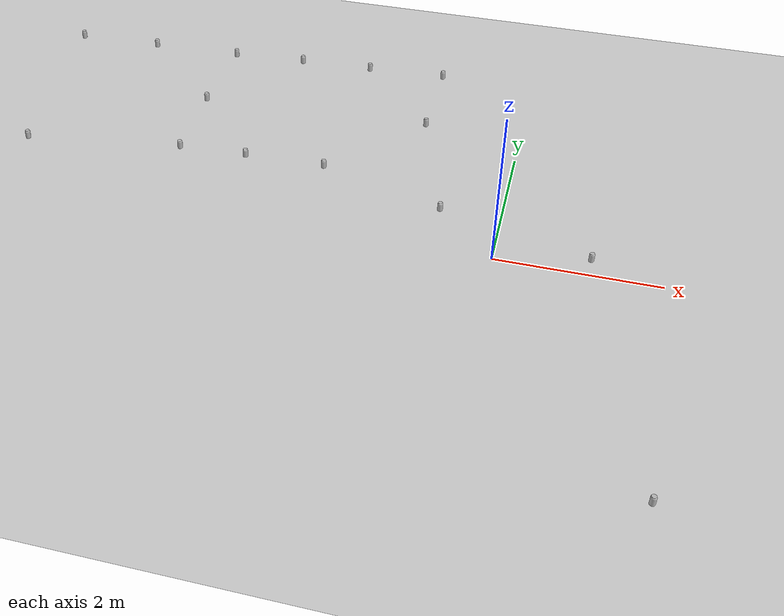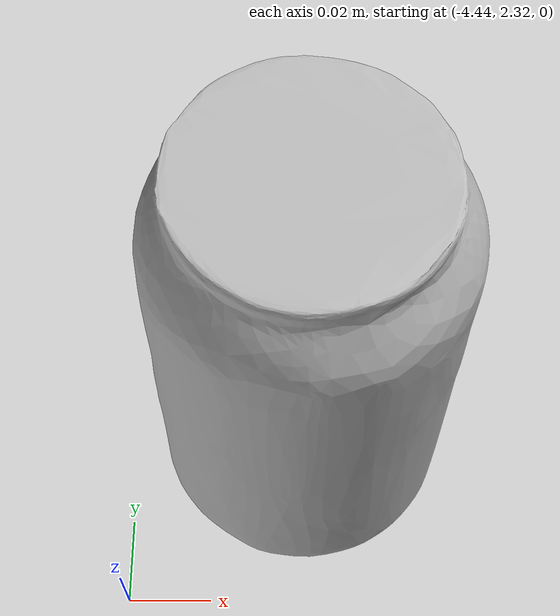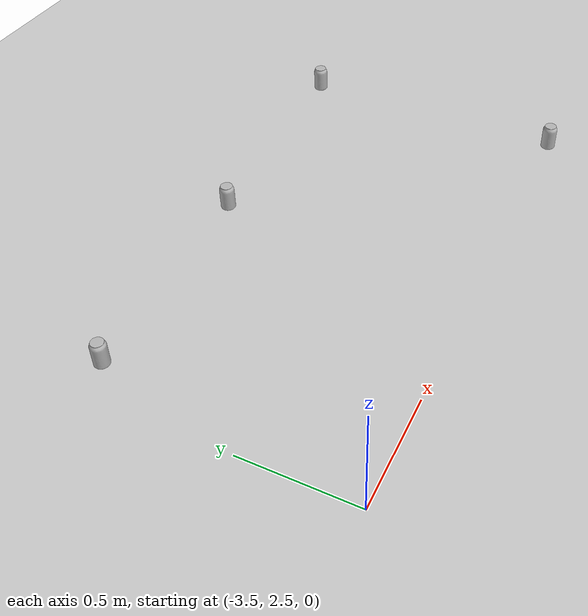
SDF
<sdf version="1.6">
 <world name="default">
  <light name="sun" type="directional">
   <pose>0 0 10 0 -0 0</pose>
   <diffuse>0.8 0.8 0.8 1</diffuse>
   <specular>0.1 0.1 0.1 1</specular>
   <attenuation>
    <range>1000</range>
    <constant>0.9</constant>
    <linear>0.01</linear>
    <quadratic>0.001</quadratic>
   </attenuation>
   <direction>-0.5 0.5 -1</direction>
  </light>
  <model name="ground_plane">
   <static>1</static>
   <link name="link">
    <collision name="collision">
     <geometry><plane><normal>0 0 1</normal><size>100 100</size></plane></geometry>
     <surface><friction><ode><mu>100</mu><mu2>50</mu2></ode></friction></surface>
    </collision>
    <visual name="visual">
     <cast_shadows>0</cast_shadows>
     <geometry><plane><normal>0 0 1</normal><size>100 100</size></plane></geometry>
     <material>
      <script><uri>file://media/materials/scripts/gazebo.material</uri><name>Gazebo/Grey</name></script>
     </material>
    </visual>
   </link>
  </model>
  <physics name="default_physics" default="0" type="ode">
   <real_time_update_rate>1000</real_time_update_rate>
   <max_step_size>0.001</max_step_size>
   <real_time_factor>1</real_time_factor>
   <ode>
    <solver>
     <type>quick</type>
     <iters>150</iters>
     <precon_iters>0</precon_iters>
     <sor>1.4</sor>
     <use_dynamic_moi_rescaling>1</use_dynamic_moi_rescaling>
    </solver>
    <constraints>
     <cfm>1e-05</cfm>
     <erp>0.2</erp>
     <contact_max_correcting_vel>2000</contact_max_correcting_vel>
     <contact_surface_layer>0.01</contact_surface_layer>
    </constraints>
   </ode>
  </physics>
  <scene><ambient>0.4 0.4 0.4 1</ambient><background>0.7 0.7 0.7 1</background><shadows>1</shadows></scene>
  <gravity>0 0 -9.8</gravity>
  <magnetic_field>6e-06 2.3e-05 -4.2e-05</magnetic_field>
  <atmosphere type="adiabatic"/>
  <spherical_coordinates>
   <surface_model>EARTH_WGS84</surface_model>
   <latitude_deg>0</latitude_deg>
   <longitude_deg>0</longitude_deg>
   <elevation>0</elevation>
   <heading_deg>0</heading_deg>
  </spherical_coordinates>
  <model name="coke_can">
   <link name="link">
    <inertial>
     <mass>0.39</mass>
     <inertia>
      <ixx>0.00055575</ixx>
      <ixy>0</ixy>
      <ixz>0</ixz>
      <iyy>0.00055575</iyy>
      <iyz>0</iyz>
      <izz>0.0001755</izz>
     </inertia>
    </inertial>
    <collision name="collision">
     <pose>0.003937 0.004724 -0.18 0 -0 0</pose>
     <geometry><mesh><uri>model://coke_can/meshes/coke_can.dae</uri><scale>1 1 1</scale></mesh></geometry>
    </collision>
    <visual name="visual">
     <pose>0.003937 0.004724 -0.18 0 -0 0</pose>
     <geometry><mesh><uri>model://coke_can/meshes/coke_can.dae</uri><scale>1 1 1</scale></mesh></geometry>
    </visual>
   </link>
   <pose>-5.60101 3.55465 -0.002567 -0.011165 0.00413 0.096089</pose>
  </model>
  <model name="coke_can_0">
   <link name="link">
    <inertial>
     <mass>0.39</mass>
     <inertia>
      <ixx>0.00055575</ixx>
      <ixy>0</ixy>
      <ixz>0</ixz>
      <iyy>0.00055575</iyy>
      <iyz>0</iyz>
      <izz>0.0001755</izz>
     </inertia>
    </inertial>
    <collision name="collision">
     <pose>0.003937 0.004724 -0.18 0 -0 0</pose>
     <geometry><mesh><uri>model://coke_can/meshes/coke_can.dae</uri><scale>1 1 1</scale></mesh></geometry>
    </collision>
    <visual name="visual">
     <pose>0.003937 0.004724 -0.18 0 -0 0</pose>
     <geometry><mesh><uri>model://coke_can/meshes/coke_can.dae</uri><scale>1 1 1</scale></mesh></geometry>
    </visual>
   </link>
   <pose>-6.76543 3.51959 -0.002561 -0.011591 0.002974 0.084196</pose>
  </model>
  <model name="coke_can_1">
   <link name="link">
    <inertial>
     <mass>0.39</mass>
     <inertia>
      <ixx>0.00055575</ixx>
      <ixy>0</ixy>
      <ixz>0</ixz>
      <iyy>0.00055575</iyy>
      <iyz>0</iyz>
      <izz>0.0001755</izz>
     </inertia>
    </inertial>
    <collision name="collision">
     <pose>0.003937 0.004724 -0.18 0 -0 0</pose>
     <geometry><mesh><uri>model://coke_can/meshes/coke_can.dae</uri><scale>1 1 1</scale></mesh></geometry>
    </collision>
    <visual name="visual">
     <pose>0.003937 0.004724 -0.18 0 -0 0</pose>
     <geometry><mesh><uri>model://coke_can/meshes/coke_can.dae</uri><scale>1 1 1</scale></mesh></geometry>
    </visual>
   </link>
   <pose>-6.42937 0.899645 -0.002564 -0.01164 0.004245 0.075661</pose>
  </model>
  <model name="coke_can_2">
   <link name="link">
    <inertial>
     <mass>0.39</mass>
     <inertia>
      <ixx>0.00055575</ixx>
      <ixy>0</ixy>
      <ixz>0</ixz>
      <iyy>0.00055575</iyy>
      <iyz>0</iyz>
      <izz>0.0001755</izz>
     </inertia>
    </inertial>
    <collision name="collision">
     <pose>0.003937 0.004724 -0.18 0 -0 0</pose>
     <geometry><mesh><uri>model://coke_can/meshes/coke_can.dae</uri><scale>1 1 1</scale></mesh></geometry>
    </collision>
    <visual name="visual">
     <pose>0.003937 0.004724 -0.18 0 -0 0</pose>
     <geometry><mesh><uri>model://coke_can/meshes/coke_can.dae</uri><scale>1 1 1</scale></mesh></geometry>
    </visual>
   </link>
   <pose>-4.35721 3.58799 -0.002566 -0.011493 0.004081 0.068759</pose>
  </model>
  <model name="coke_can_3">
   <link name="link">
    <inertial>
     <mass>0.39</mass>
     <inertia>
      <ixx>0.00055575</ixx>
      <ixy>0</ixy>
      <ixz>0</ixz>
      <iyy>0.00055575</iyy>
      <iyz>0</iyz>
      <izz>0.0001755</izz>
     </inertia>
    </inertial>
    <collision name="collision">
     <pose>0.003937 0.004724 -0.18 0 -0 0</pose>
     <geometry><mesh><uri>model://coke_can/meshes/coke_can.dae</uri><scale>1 1 1</scale></mesh></geometry>
    </collision>
    <visual name="visual">
     <pose>0.003937 0.004724 -0.18 0 -0 0</pose>
     <geometry><mesh><uri>model://coke_can/meshes/coke_can.dae</uri><scale>1 1 1</scale></mesh></geometry>
    </visual>
   </link>
   <pose>-3.3524 3.65555 -0.002565 -0.011381 0.003941 0.065069</pose>
  </model>
  <model name="coke_can_4">
   <link name="link">
    <inertial>
     <mass>0.39</mass>
     <inertia>
      <ixx>0.00055575</ixx>
      <ixy>0</ixy>
      <ixz>0</ixz>
      <iyy>0.00055575</iyy>
      <iyz>0</iyz>
      <izz>0.0001755</izz>
     </inertia>
    </inertial>
    <collision name="collision">
     <pose>0.003937 0.004724 -0.18 0 -0 0</pose>
     <geometry><mesh><uri>model://coke_can/meshes/coke_can.dae</uri><scale>1 1 1</scale></mesh></geometry>
    </collision>
    <visual name="visual">
     <pose>0.003937 0.004724 -0.18 0 -0 0</pose>
     <geometry><mesh><uri>model://coke_can/meshes/coke_can.dae</uri><scale>1 1 1</scale></mesh></geometry>
    </visual>
   </link>
   <pose>-4.39739 2.36232 -0.002563 -0.011971 0.004094 0.059497</pose>
  </model>
  <model name="coke_can_5">
   <link name="link">
    <inertial>
     <mass>0.39</mass>
     <inertia>
      <ixx>0.00055575</ixx>
      <ixy>0</ixy>
      <ixz>0</ixz>
      <iyy>0.00055575</iyy>
      <iyz>0</iyz>
      <izz>0.0001755</izz>
     </inertia>
    </inertial>
    <collision name="collision">
     <pose>0.003937 0.004724 -0.18 0 -0 0</pose>
     <geometry><mesh><uri>model://coke_can/meshes/coke_can.dae</uri><scale>1 1 1</scale></mesh></geometry>
    </collision>
    <visual name="visual">
     <pose>0.003937 0.004724 -0.18 0 -0 0</pose>
     <geometry><mesh><uri>model://coke_can/meshes/coke_can.dae</uri><scale>1 1 1</scale></mesh></geometry>
    </visual>
   </link>
   <pose>-4.36339 1.19053 -0.002565 -0.01076 0.004081 0.051027</pose>
  </model>
  <model name="coke_can_6">
   <link name="link">
    <inertial>
     <mass>0.39</mass>
     <inertia>
      <ixx>0.00055575</ixx>
      <ixy>0</ixy>
      <ixz>0</ixz>
      <iyy>0.00055575</iyy>
      <iyz>0</iyz>
      <izz>0.0001755</izz>
     </inertia>
    </inertial>
    <collision name="collision">
     <pose>0.003937 0.004724 -0.18 0 -0 0</pose>
     <geometry><mesh><uri>model://coke_can/meshes/coke_can.dae</uri><scale>1 1 1</scale></mesh></geometry>
    </collision>
    <visual name="visual">
     <pose>0.003937 0.004724 -0.18 0 -0 0</pose>
     <geometry><mesh><uri>model://coke_can/meshes/coke_can.dae</uri><scale>1 1 1</scale></mesh></geometry>
    </visual>
   </link>
   <pose>-3.46101 1.22625 -0.002565 -0.011003 0.00405 0.049288</pose>
  </model>
  <model name="coke_can_7">
   <link name="link">
    <inertial>
     <mass>0.39</mass>
     <inertia>
      <ixx>0.00055575</ixx>
      <ixy>0</ixy>
      <ixz>0</ixz>
      <iyy>0.00055575</iyy>
      <iyz>0</iyz>
      <izz>0.0001755</izz>
     </inertia>
    </inertial>
    <collision name="collision">
     <pose>0.003937 0.004724 -0.18 0 -0 0</pose>
     <geometry><mesh><uri>model://coke_can/meshes/coke_can.dae</uri><scale>1 1 1</scale></mesh></geometry>
    </collision>
    <visual name="visual">
     <pose>0.003937 0.004724 -0.18 0 -0 0</pose>
     <geometry><mesh><uri>model://coke_can/meshes/coke_can.dae</uri><scale>1 1 1</scale></mesh></geometry>
    </visual>
   </link>
   <pose>-2.34983 3.69328 -0.002561 -0.011113 0.002803 0.044182</pose>
  </model>
  <model name="coke_can_8">
   <link name="link">
    <inertial>
     <mass>0.39</mass>
     <inertia>
      <ixx>0.00055575</ixx>
      <ixy>0</ixy>
      <ixz>0</ixz>
      <iyy>0.00055575</iyy>
      <iyz>0</iyz>
      <izz>0.0001755</izz>
     </inertia>
    </inertial>
    <collision name="collision">
     <pose>0.003937 0.004724 -0.18 0 -0 0</pose>
     <geometry><mesh><uri>model://coke_can/meshes/coke_can.dae</uri><scale>1 1 1</scale></mesh></geometry>
    </collision>
    <visual name="visual">
     <pose>0.003937 0.004724 -0.18 0 -0 0</pose>
     <geometry><mesh><uri>model://coke_can/meshes/coke_can.dae</uri><scale>1 1 1</scale></mesh></geometry>
    </visual>
   </link>
   <pose>-2.39978 1.2491 -0.002564 -0.012006 0.004199 0.041607</pose>
  </model>
  <model name="coke_can_9">
   <link name="link">
    <inertial>
     <mass>0.39</mass>
     <inertia>
      <ixx>0.00055575</ixx>
      <ixy>0</ixy>
      <ixz>0</ixz>
      <iyy>0.00055575</iyy>
      <iyz>0</iyz>
      <izz>0.0001755</izz>
     </inertia>
    </inertial>
    <collision name="collision">
     <pose>0.003937 0.004724 -0.18 0 -0 0</pose>
     <geometry><mesh><uri>model://coke_can/meshes/coke_can.dae</uri><scale>1 1 1</scale></mesh></geometry>
    </collision>
    <visual name="visual">
     <pose>0.003937 0.004724 -0.18 0 -0 0</pose>
     <geometry><mesh><uri>model://coke_can/meshes/coke_can.dae</uri><scale>1 1 1</scale></mesh></geometry>
    </visual>
   </link>
   <pose>-1.28302 3.74938 -0.002564 -0.011978 0.004243 0.036151</pose>
  </model>
  <model name="coke_can_10">
   <link name="link">
    <inertial>
     <mass>0.39</mass>
     <inertia>
      <ixx>0.00055575</ixx>
      <ixy>0</ixy>
      <ixz>0</ixz>
      <iyy>0.00055575</iyy>
      <iyz>0</iyz>
      <izz>0.0001755</izz>
     </inertia>
    </inertial>
    <collision name="collision">
     <pose>0.003937 0.004724 -0.18 0 -0 0</pose>
     <geometry><mesh><uri>model://coke_can/meshes/coke_can.dae</uri><scale>1 1 1</scale></mesh></geometry>
    </collision>
    <visual name="visual">
     <pose>0.003937 0.004724 -0.18 0 -0 0</pose>
     <geometry><mesh><uri>model://coke_can/meshes/coke_can.dae</uri><scale>1 1 1</scale></mesh></geometry>
    </visual>
   </link>
   <pose>-1.28936 2.51109 -0.002574 -0.01143 0.003899 0.032856</pose>
  </model>
  <model name="coke_can_11">
   <link name="link">
    <inertial>
     <mass>0.39</mass>
     <inertia>
      <ixx>0.00055575</ixx>
      <ixy>0</ixy>
      <ixz>0</ixz>
      <iyy>0.00055575</iyy>
      <iyz>0</iyz>
      <izz>0.0001755</izz>
     </inertia>
    </inertial>
    <collision name="collision">
     <pose>0.003937 0.004724 -0.18 0 -0 0</pose>
     <geometry><mesh><uri>model://coke_can/meshes/coke_can.dae</uri><scale>1 1 1</scale></mesh></geometry>
    </collision>
    <visual name="visual">
     <pose>0.003937 0.004724 -0.18 0 -0 0</pose>
     <geometry><mesh><uri>model://coke_can/meshes/coke_can.dae</uri><scale>1 1 1</scale></mesh></geometry>
    </visual>
   </link>
   <pose>-0.766692 0.752071 -0.002564 -0.010945 0.00386 0.030732</pose>
  </model>
  <model name="coke_can_12">
   <link name="link">
    <inertial>
     <mass>0.39</mass>
     <inertia>
      <ixx>0.00055575</ixx>
      <ixy>0</ixy>
      <ixz>0</ixz>
      <iyy>0.00055575</iyy>
      <iyz>0</iyz>
      <izz>0.0001755</izz>
     </inertia>
    </inertial>
    <collision name="collision">
     <pose>0.003937 0.004724 -0.18 0 -0 0</pose>
     <geometry><mesh><uri>model://coke_can/meshes/coke_can.dae</uri><scale>1 1 1</scale></mesh></geometry>
    </collision>
    <visual name="visual">
     <pose>0.003937 0.004724 -0.18 0 -0 0</pose>
     <geometry><mesh><uri>model://coke_can/meshes/coke_can.dae</uri><scale>1 1 1</scale></mesh></geometry>
    </visual>
   </link>
   <pose>1.14317 0.25368 -0.002565 -0.011904 0.004195 0.028319</pose>
  </model>
  <model name="coke_can_13">
   <link name="link">
    <inertial>
     <mass>0.39</mass>
     <inertia>
      <ixx>0.00055575</ixx>
      <ixy>0</ixy>
      <ixz>0</ixz>
      <iyy>0.00055575</iyy>
      <iyz>0</iyz>
      <izz>0.0001755</izz>
     </inertia>
    </inertial>
    <collision name="collision">
     <pose>0.003937 0.004724 -0.18 0 -0 0</pose>
     <geometry><mesh><uri>model://coke_can/meshes/coke_can.dae</uri><scale>1 1 1</scale></mesh></geometry>
    </collision>
    <visual name="visual">
     <pose>0.003937 0.004724 -0.18 0 -0 0</pose>
     <geometry><mesh><uri>model://coke_can/meshes/coke_can.dae</uri><scale>1 1 1</scale></mesh></geometry>
    </visual>
   </link>
   <pose>2.00955 -3.13151 -0.002564 -0.012012 0.004316 0.026114</pose>
  </model>
 </world>
</sdf>
